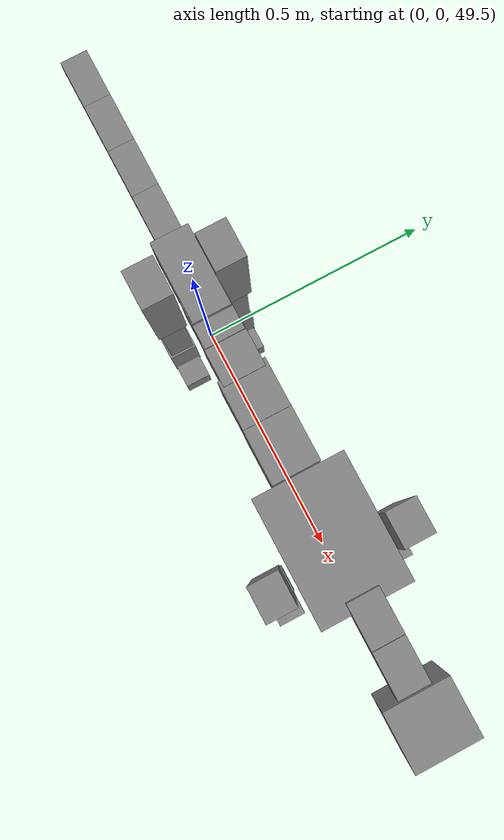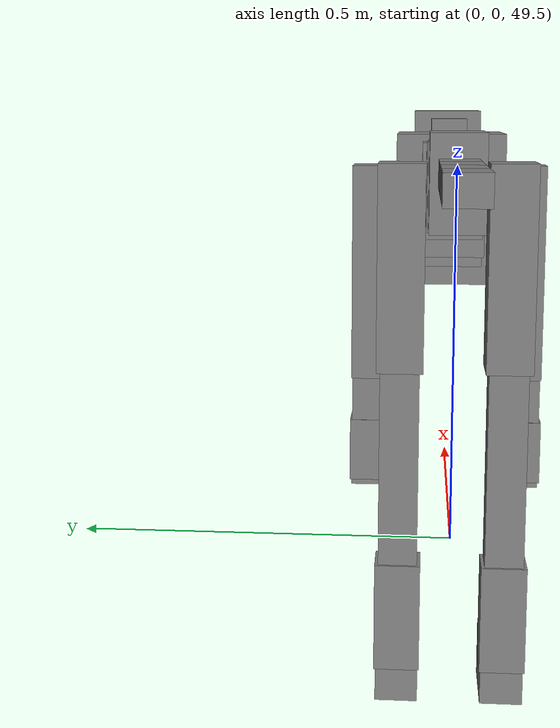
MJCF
<mujoco model="dog">

    <default>
        <joint armature="0.02" stiffness="1" damping="0.2" limited="true"/>
        <geom condim="3" friction="1 0.05 0.05" margin="0.01"/>
        <motor ctrllimited="true" ctrlrange="-1.0 1.0" forcelimited="true" gear="50"/>
    </default>

    <compiler inertiafromgeom="true" angle="radian"/>

    <option timestep="0.016" iterations="50" tolerance="1e-10" solver="Newton" jacobian="dense" cone="pyramidal"/>

    <size nconmax="20000" njmax="60000" nstack="5000000"/>
    <visual>
        <map force="0.1" zfar="30"/>
        <rgba haze="0.15 0.25 0.35 1"/>
        <quality shadowsize="2048"/>
        <global offwidth="800" offheight="800"/>
    </visual>

    <asset>
        <texture type="skybox" builtin="gradient" rgb1="0.3 0.5 0.7" rgb2="0 0 0" width="512" height="512"/>
        <texture name="texplane" type="2d" builtin="checker" rgb1=".2 .3 .4" rgb2=".1 0.15 0.2" width="512" height="512"
                 mark="cross" markrgb=".8 .8 .8"/>
        <texture name="texgeom" type="cube" builtin="flat" mark="cross" width="127" height="1278" rgb1="0.8 0.6 0.4"
                 rgb2="0.8 0.6 0.4" markrgb="1 1 1" random="0.01"/>

        <material name="matplane" reflectance="0.3" texture="texplane" texrepeat="1 1" texuniform="true"/>
        <material name="matgeom" texture="texgeom" texuniform="true" rgba="0.8 0.6 .4 1"/>
    </asset>

    <worldbody>
        <geom name="floor" pos="0 0 0" size="0 0 .25" type="plane" material="matplane" condim="3"/>

        <light directional="false" diffuse=".2 .2 .2" specular="0 0 0" pos="0 0 5" dir="0 0 -1" castshadow="false"/>
        <light mode="targetbodycom" target="torso" directional="false" diffuse=".8 .8 .8" specular="0.3 0.3 0.3"
               pos="0 0 4.0" dir="0 0 -1"/>

        <body name="root" pos="0 0 50">
            <freejoint name="root_1"/>
            <geom type="box" pos="0 0 -0.02" size="0.0774  0.0358  0.063" density="2030"/>

            <body name="spine1" pos="0.054 0 0">
                <joint name="spine1_y" axis="0 1 0" range="0 0.7" limited="true"/>
                <geom type="box" pos="0.02375 0 -0.03" size="0.04375  0.0375  0.05985" density="2030"/>

                <body name="spine2" pos="0.0612 0 0">
                    <joint name="spine2_y" axis="0 1 0" range="-0.15 0.15" limited="true"/>
                    <geom type="box" pos="0.03555  0  -0.04" size="0.04055  0.039  0.06615" density="2030"/>

                    <body name="spine3" pos="0.0730 0 0">
                        <joint name="spine3_y" axis="0 1 0" range="-0.15 0.15" limited="true"/>
                        <geom type="box" pos="0.03555  0  -0.057" size="0.04555  0.0445  0.081" density="2030"/>

                        <body name="spine4" pos="0.0780 0 0">
                            <joint name="spine4_y" axis="0 1 0" range="-0.15 0.15" limited="true"/>
                            <geom type="box" pos="0.05265  0  -0.07" size="0.05265  0.045  0.09135" density="2030"/>

                            <body name="torso" pos="0.1082 0 0">
                                <joint name="torso_y" axis="0 1 0" range="-0.15 0.15" limited="true"/>
                                <geom type="box" pos="0.11925  0  -0.085" size="0.11925  0.085  0.11745"
                                      density="2030"/>

                                <body name="neck1" pos="0.2160  0   0.0180">
                                    <joint name="neck1_y" axis="0 1 0" range="-1.2  -1" limited="true"/>
                                    <geom type="box" pos="0.0423  0  0" size="0.0423  0.03  0.036" density="2325"/>

                                    <body name="neck2" pos="0.0853  0  0">
                                        <joint name="neck2_y" axis="0 1 0" range="0.1  0" limited="true"/>
                                        <geom type="box" pos="0.0423  0  0" size="0.0423  0.03  0.036" density="2325"/>

                                        <body name="head" pos="0.0853  0  0">
                                            <joint name="head_y" axis="0 1 0" range="-0.3  -0.2" limited="true"/>
                                            <geom type="box" pos="0.0531  0  -0.055" size="0.0531  0.06  0.1044"
                                                  density="4030"/>

                                        </body>
                                    </body>
                                </body>

                                <body name="front_shoulder" pos="0.156  0   -0.0480">
                                    <joint name="front_shoulder_y" axis="0 1 0" range="-1 1.5" limited="true"/>
                                    <geom type="box" pos="0 0.13 -0.1530" size="0.0351  0.0300  0.1797" density="1158"/>
                                    <geom type="box" pos="0 -0.13 -0.1530" size="0.0351  0.0300  0.1797"
                                          density="1158"/>

                                    <body name="front_elbow" pos="0  0  -0.3060">
                                        <joint name="front_elbow_y" axis="0 1 0" range="-2 0" limited="true"/>
                                        <geom type="box" pos="0 0.13 -0.0570" size="0.0280  0.0286  0.0570"
                                              density="1081"/>
                                        <geom type="box" pos="0 -0.13 -0.0570" size="0.0280  0.0286  0.0570"
                                              density="1081"/>

                                        <body name="front_wrist" pos="0  0  -0.1139">
                                            <joint name="front_wrist_y" axis="0 1 0" range="-0.2 0" limited="true"/>
                                            <geom type="box" pos="0 0.13 -0.0395" size="0.0288  0.0320  0.0527"
                                                  density="1664"/>
                                            <geom type="box" pos="0 -0.13 -0.0395" size="0.0288  0.0320  0.0527"
                                                  density="1664"/>

                                            <body name="front_finger_end" pos="0  0  -0.0790">
                                                <joint name="front_finger_y" axis="0 1 0" range="-0.4 1"
                                                       limited="true"/>
                                                <geom type="box" pos="0.0292  0.13  -0.0039"
                                                      size="0.0535  0.0292  0.0189" density="1515"/>
                                                <geom type="box" pos="0.0292  -0.13  -0.0039"
                                                      size="0.0535  0.0292  0.0189" density="1515"/>

                                            </body>

                                        </body>
                                    </body>
                                </body>

                            </body>
                        </body>
                    </body>
                </body>
            </body>

            <body name="back_hip" pos="-0.03 0 -0.018">
                <joint name="back_hip_y" axis="0 1 0" range="-1.5 0.3" limited="true"/>
                <geom type="box" pos="0 0.07 -0.1104" size="0.0385  0.0302  0.1332" density="1154"/>
                <geom type="box" pos="0 -0.07 -0.1104" size="0.0385  0.0302  0.1332" density="1154"/>

                <body name="back_knee" pos="0  0  -0.2208">
                    <joint name="back_knee_y" axis="0 1 0" range="0 2.8" limited="true"/>
                    <geom type="box" pos="0 0.07 -0.1467" size="0.0260  0.0256  0.1622" density="1227"/>
                    <geom type="box" pos="0 -0.07 -0.1467" size="0.0260  0.0256  0.1622" density="1227"/>

                    <body name="back_ankle" pos="0  0  -0.2934">
                        <joint name="back_ankle_y" axis="0 1 0" range="-2.2 0" limited="true"/>
                        <geom type="box" pos="0 0.07 -0.0609" size="0.0300  0.0300  0.0722" density="1284"/>
                        <geom type="box" pos="0 -0.07 -0.0609" size="0.0300  0.0300  0.0722" density="1284"/>

                        <body name="back_toe_end" pos="0  0  -0.1219">
                            <joint name="back_toe_y" axis="0 1 0" range="-0.4 1" limited="true"/>
                            <geom type="box" pos="0.0282  0.07  -0.0214" size="0.0517  0.0282  0.0364" density="1515"/>
                            <geom type="box" pos="0.0282  -0.07  -0.0214" size="0.0517  0.0282  0.0364" density="1515"/>

                        </body>
                    </body>
                </body>
            </body>

            <body name="tail1" pos="-0.074 0 -0.006">
                <joint name="tail1_y" axis="0 1 0" range="-0.2 0.2" limited="true"/>
                <geom type="box" pos="-0.0536  0  0" size="0.045  0.025  0.0175" density="1587"/>

                <body name="tail2" pos="-0.09 0 0">
                    <joint name="tail2_y" axis="0 1 0" range="-0.2 0.2" limited="true"/>
                    <geom type="box" pos="-0.0536  0  0" size="0.045  0.025  0.0175" density="1587"/>

                    <body name="tail3" pos="-0.09 0 0">
                        <joint name="tail3_y" axis="0 1 0" range="-0.2 0.2" limited="true"/>
                        <geom type="box" pos="-0.0536  0  0" size="0.045  0.025  0.0175" density="1587"/>

                        <body name="tail4" pos="-0.09 0 0">
                            <joint name="tail4_y" axis="0 1 0" range="-0.2 0.2" limited="true"/>
                            <geom type="box" pos="-0.0536  0  0" size="0.045  0.025  0.0175" density="1587"/>

                        </body>
                    </body>
                </body>
            </body>
        </body>
    </worldbody>

    <actuator>
        <motor joint="spine1_y" forcerange="-150 150     "/>
        <motor joint="spine2_y" forcerange="-150 150     "/>
        <motor joint="spine3_y" forcerange="-150 150     "/>
        <motor joint="spine4_y" forcerange="-150 150     "/>
        <motor joint="torso_y" forcerange="-150 150     "/>
        <motor joint="neck1_y" forcerange="-100 100       "/>
        <motor joint="neck2_y" forcerange="-100 100       "/>
        <motor joint="head_y" forcerange="-150 150       "/>
        <motor joint="front_shoulder_y" forcerange="-151.47 148.53"/>
        <motor joint="front_elbow_y" forcerange="-180.65 127.61"/>
        <motor joint="front_wrist_y" forcerange="-123.99 132.08"/>
        <motor joint="front_finger_y" forcerange="-66.76 48.82"/>
        <motor joint="back_hip_y" forcerange="-370.36 232.39"/>
        <motor joint="back_knee_y" forcerange="-289.28 283.14"/>
        <motor joint="back_angle_y" forcerange="-230.44 150.06"/>
        <motor joint="back_toe_y" forcerange="-25.40 120.38"/>
        <motor joint="tail1_y" forcerange="-50 50     "/>
        <motor joint="tail2_y" forcerange="-50 50     "/>
        <motor joint="tail3_y" forcerange="-50 50     "/>
        <motor joint="tail4_y" forcerange="-50 50     "/>
    </actuator>
</mujoco>
